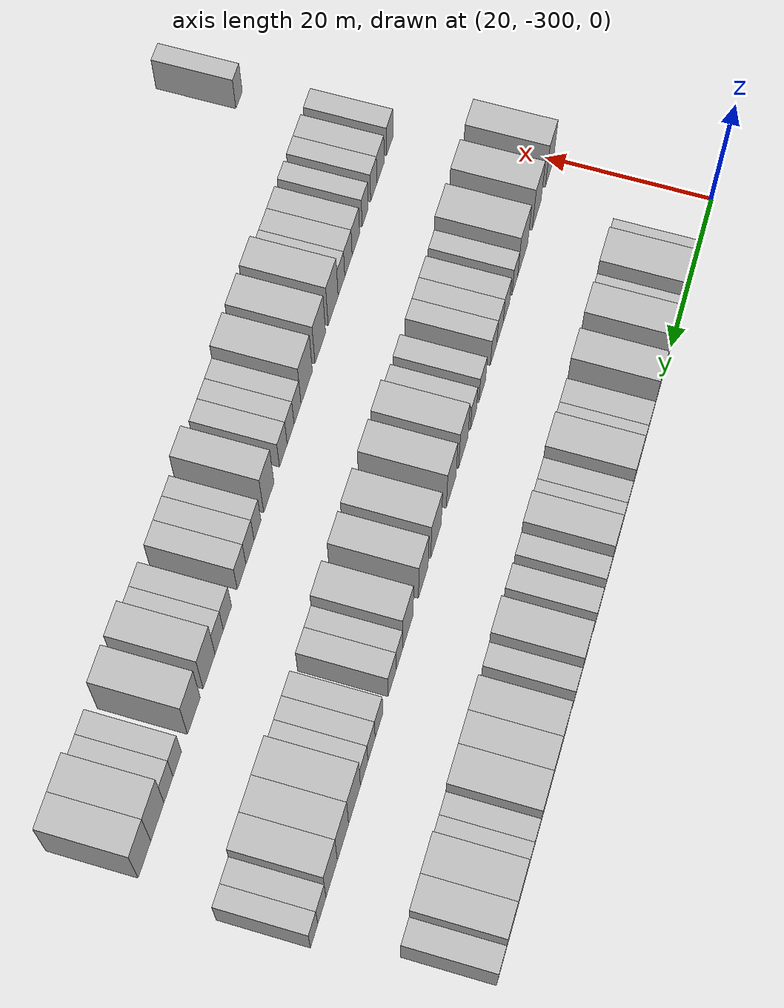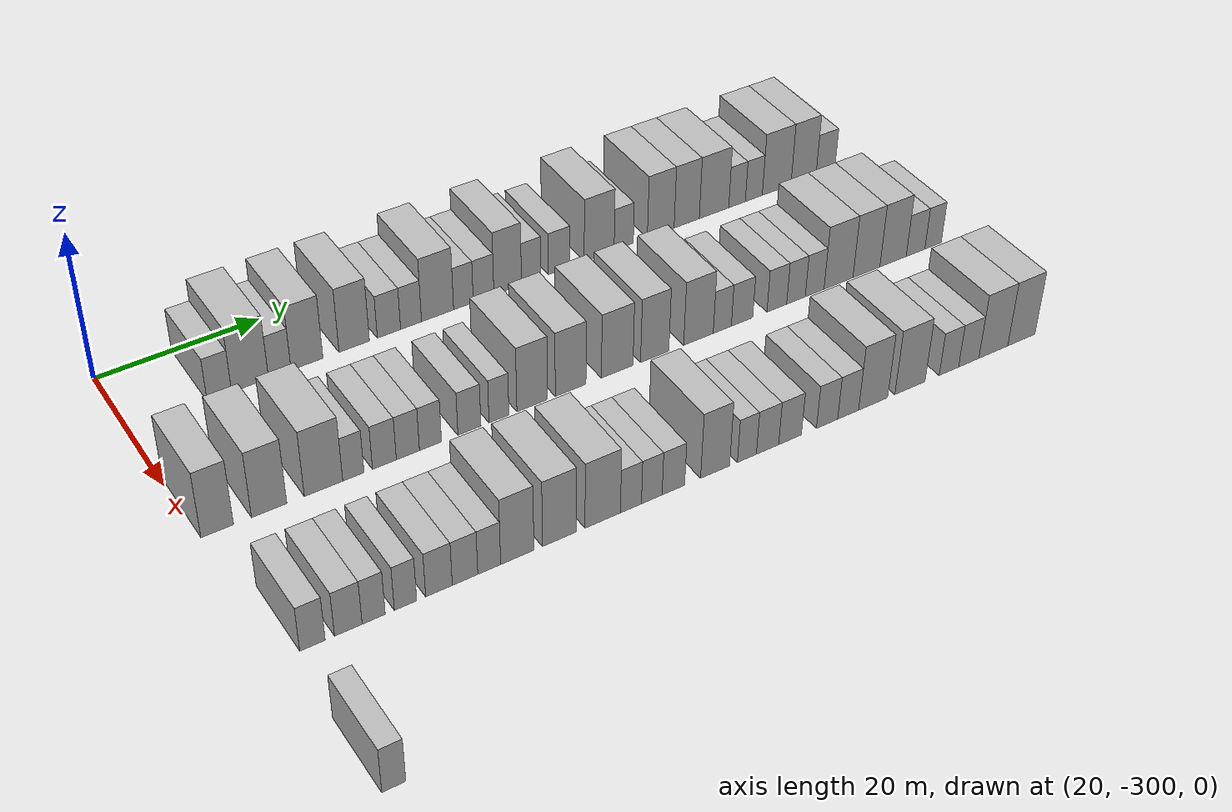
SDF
<sdf version="1.6">
 <world name="default">
  <model name="building_14">
   <static>1</static>
   <pose>25.0000 -289.3528 0 0.000000 0.000000 0.000000</pose>
   <link name="link">
    <pose>0 0 3.00 0 0 0</pose>
    <collision name="collision"><geometry><box><size>10.0000 2.9180 6.0000</size></box></geometry></collision>
    <visual name="visual">
     <cast_shadows>0</cast_shadows>
     <geometry><box><size>10.0000 2.9180 6.0000</size></box></geometry>
     <material>
      <script>
       <uri>model://HANNAS_wall/materials/scripts</uri>
       <uri>model://HANNAS_wall/materials/textures</uri>
       <name>vrc/HANNAS_wall</name>
      </script>
     </material>
    </visual>
   </link>
  </model>
  <model name="building_15">
   <static>1</static>
   <pose>25.0000 -285.6811 0 0.000000 0.000000 0.000000</pose>
   <link name="link">
    <pose>0 0 4.50 0 0 0</pose>
    <collision name="collision"><geometry><box><size>10.0000 4.4253 9.0000</size></box></geometry></collision>
    <visual name="visual">
     <cast_shadows>0</cast_shadows>
     <geometry><box><size>10.0000 4.4253 9.0000</size></box></geometry>
     <material>
      <script>
       <uri>model://HANNAS_wall/materials/scripts</uri>
       <uri>model://HANNAS_wall/materials/textures</uri>
       <name>vrc/HANNAS_wall</name>
      </script>
     </material>
    </visual>
   </link>
  </model>
  <model name="building_16">
   <static>1</static>
   <pose>25.0000 -282.0970 0 0.000000 0.000000 0.000000</pose>
   <link name="link">
    <pose>0 0 3.00 0 0 0</pose>
    <collision name="collision"><geometry><box><size>10.0000 2.7429 6.0000</size></box></geometry></collision>
    <visual name="visual">
     <cast_shadows>0</cast_shadows>
     <geometry><box><size>10.0000 2.7429 6.0000</size></box></geometry>
     <material>
      <script>
       <uri>model://HANNAS_wall/materials/scripts</uri>
       <uri>model://HANNAS_wall/materials/textures</uri>
       <name>vrc/HANNAS_wall</name>
      </script>
     </material>
    </visual>
   </link>
  </model>
  <model name="building_17">
   <static>1</static>
   <pose>25.0000 -278.7646 0 0.000000 0.000000 0.000000</pose>
   <link name="link">
    <pose>0 0 4.50 0 0 0</pose>
    <collision name="collision"><geometry><box><size>10.0000 3.9218 9.0000</size></box></geometry></collision>
    <visual name="visual">
     <cast_shadows>0</cast_shadows>
     <geometry><box><size>10.0000 3.9218 9.0000</size></box></geometry>
     <material>
      <script>
       <uri>model://HANNAS_wall/materials/scripts</uri>
       <uri>model://HANNAS_wall/materials/textures</uri>
       <name>vrc/HANNAS_wall</name>
      </script>
     </material>
    </visual>
   </link>
  </model>
  <model name="building_18">
   <static>1</static>
   <pose>25.0000 -272.8921 0 0.000000 0.000000 0.000000</pose>
   <link name="link">
    <pose>0 0 4.50 0 0 0</pose>
    <collision name="collision"><geometry><box><size>10.0000 3.8233 9.0000</size></box></geometry></collision>
    <visual name="visual">
     <cast_shadows>0</cast_shadows>
     <geometry><box><size>10.0000 3.8233 9.0000</size></box></geometry>
     <material>
      <script>
       <uri>model://HANNAS_wall/materials/scripts</uri>
       <uri>model://HANNAS_wall/materials/textures</uri>
       <name>vrc/HANNAS_wall</name>
      </script>
     </material>
    </visual>
   </link>
  </model>
  <model name="building_19">
   <static>1</static>
   <pose>25.0000 -268.4926 0 0.000000 0.000000 0.000000</pose>
   <link name="link">
    <pose>0 0 3.00 0 0 0</pose>
    <collision name="collision"><geometry><box><size>10.0000 2.9757 6.0000</size></box></geometry></collision>
    <visual name="visual">
     <cast_shadows>0</cast_shadows>
     <geometry><box><size>10.0000 2.9757 6.0000</size></box></geometry>
     <material>
      <script>
       <uri>model://HANNAS_wall/materials/scripts</uri>
       <uri>model://HANNAS_wall/materials/textures</uri>
       <name>vrc/HANNAS_wall</name>
      </script>
     </material>
    </visual>
   </link>
  </model>
  <model name="building_20">
   <static>1</static>
   <pose>25.0000 -265.6619 0 0.000000 0.000000 0.000000</pose>
   <link name="link">
    <pose>0 0 3.00 0 0 0</pose>
    <collision name="collision"><geometry><box><size>10.0000 2.6859 6.0000</size></box></geometry></collision>
    <visual name="visual">
     <cast_shadows>0</cast_shadows>
     <geometry><box><size>10.0000 2.6859 6.0000</size></box></geometry>
     <material>
      <script>
       <uri>model://HANNAS_wall/materials/scripts</uri>
       <uri>model://HANNAS_wall/materials/textures</uri>
       <name>vrc/HANNAS_wall</name>
      </script>
     </material>
    </visual>
   </link>
  </model>
  <model name="building_21">
   <static>1</static>
   <pose>25.0000 -262.2273 0 0.000000 0.000000 0.000000</pose>
   <link name="link">
    <pose>0 0 4.50 0 0 0</pose>
    <collision name="collision"><geometry><box><size>10.0000 4.1832 9.0000</size></box></geometry></collision>
    <visual name="visual">
     <cast_shadows>0</cast_shadows>
     <geometry><box><size>10.0000 4.1832 9.0000</size></box></geometry>
     <material>
      <script>
       <uri>model://HANNAS_wall/materials/scripts</uri>
       <uri>model://HANNAS_wall/materials/textures</uri>
       <name>vrc/HANNAS_wall</name>
      </script>
     </material>
    </visual>
   </link>
  </model>
  <model name="building_22">
   <static>1</static>
   <pose>25.0000 -258.8390 0 0.000000 0.000000 0.000000</pose>
   <link name="link">
    <pose>0 0 3.00 0 0 0</pose>
    <collision name="collision"><geometry><box><size>10.0000 2.5935 6.0000</size></box></geometry></collision>
    <visual name="visual">
     <cast_shadows>0</cast_shadows>
     <geometry><box><size>10.0000 2.5935 6.0000</size></box></geometry>
     <material>
      <script>
       <uri>model://HANNAS_wall/materials/scripts</uri>
       <uri>model://HANNAS_wall/materials/textures</uri>
       <name>vrc/HANNAS_wall</name>
      </script>
     </material>
    </visual>
   </link>
  </model>
  <model name="building_23">
   <static>1</static>
   <pose>25.0000 -256.1742 0 0.000000 0.000000 0.000000</pose>
   <link name="link">
    <pose>0 0 3.00 0 0 0</pose>
    <collision name="collision"><geometry><box><size>10.0000 2.7360 6.0000</size></box></geometry></collision>
    <visual name="visual">
     <cast_shadows>0</cast_shadows>
     <geometry><box><size>10.0000 2.7360 6.0000</size></box></geometry>
     <material>
      <script>
       <uri>model://HANNAS_wall/materials/scripts</uri>
       <uri>model://HANNAS_wall/materials/textures</uri>
       <name>vrc/HANNAS_wall</name>
      </script>
     </material>
    </visual>
   </link>
  </model>
  <model name="building_24">
   <static>1</static>
   <pose>25.0000 -252.9515 0 0.000000 0.000000 0.000000</pose>
   <link name="link">
    <pose>0 0 4.50 0 0 0</pose>
    <collision name="collision"><geometry><box><size>10.0000 3.7094 9.0000</size></box></geometry></collision>
    <visual name="visual">
     <cast_shadows>0</cast_shadows>
     <geometry><box><size>10.0000 3.7094 9.0000</size></box></geometry>
     <material>
      <script>
       <uri>model://HANNAS_wall/materials/scripts</uri>
       <uri>model://HANNAS_wall/materials/textures</uri>
       <name>vrc/HANNAS_wall</name>
      </script>
     </material>
    </visual>
   </link>
  </model>
  <model name="building_25">
   <static>1</static>
   <pose>25.0000 -249.7769 0 0.000000 0.000000 0.000000</pose>
   <link name="link">
    <pose>0 0 3.00 0 0 0</pose>
    <collision name="collision"><geometry><box><size>10.0000 2.6398 6.0000</size></box></geometry></collision>
    <visual name="visual">
     <cast_shadows>0</cast_shadows>
     <geometry><box><size>10.0000 2.6398 6.0000</size></box></geometry>
     <material>
      <script>
       <uri>model://HANNAS_wall/materials/scripts</uri>
       <uri>model://HANNAS_wall/materials/textures</uri>
       <name>vrc/HANNAS_wall</name>
      </script>
     </material>
    </visual>
   </link>
  </model>
  <model name="building_26">
   <static>1</static>
   <pose>25.0000 -245.9843 0 0.000000 0.000000 0.000000</pose>
   <link name="link">
    <pose>0 0 3.00 0 0 0</pose>
    <collision name="collision"><geometry><box><size>10.0000 2.9455 6.0000</size></box></geometry></collision>
    <visual name="visual">
     <cast_shadows>0</cast_shadows>
     <geometry><box><size>10.0000 2.9455 6.0000</size></box></geometry>
     <material>
      <script>
       <uri>model://HANNAS_wall/materials/scripts</uri>
       <uri>model://HANNAS_wall/materials/textures</uri>
       <name>vrc/HANNAS_wall</name>
      </script>
     </material>
    </visual>
   </link>
  </model>
  <model name="building_27">
   <static>1</static>
   <pose>25.0000 -240.4150 0 0.000000 0.000000 0.000000</pose>
   <link name="link">
    <pose>0 0 4.50 0 0 0</pose>
    <collision name="collision"><geometry><box><size>10.0000 4.1932 9.0000</size></box></geometry></collision>
    <visual name="visual">
     <cast_shadows>0</cast_shadows>
     <geometry><box><size>10.0000 4.1932 9.0000</size></box></geometry>
     <material>
      <script>
       <uri>model://HANNAS_wall/materials/scripts</uri>
       <uri>model://HANNAS_wall/materials/textures</uri>
       <name>vrc/HANNAS_wall</name>
      </script>
     </material>
    </visual>
   </link>
  </model>
  <model name="building_28">
   <static>1</static>
   <pose>25.0000 -236.9606 0 0.000000 0.000000 0.000000</pose>
   <link name="link">
    <pose>0 0 3.00 0 0 0</pose>
    <collision name="collision"><geometry><box><size>10.0000 2.7154 6.0000</size></box></geometry></collision>
    <visual name="visual">
     <cast_shadows>0</cast_shadows>
     <geometry><box><size>10.0000 2.7154 6.0000</size></box></geometry>
     <material>
      <script>
       <uri>model://HANNAS_wall/materials/scripts</uri>
       <uri>model://HANNAS_wall/materials/textures</uri>
       <name>vrc/HANNAS_wall</name>
      </script>
     </material>
    </visual>
   </link>
  </model>
  <model name="building_29">
   <static>1</static>
   <pose>25.0000 -231.6772 0 0.000000 0.000000 0.000000</pose>
   <link name="link">
    <pose>0 0 4.50 0 0 0</pose>
    <collision name="collision"><geometry><box><size>10.0000 3.8514 9.0000</size></box></geometry></collision>
    <visual name="visual">
     <cast_shadows>0</cast_shadows>
     <geometry><box><size>10.0000 3.8514 9.0000</size></box></geometry>
     <material>
      <script>
       <uri>model://HANNAS_wall/materials/scripts</uri>
       <uri>model://HANNAS_wall/materials/textures</uri>
       <name>vrc/HANNAS_wall</name>
      </script>
     </material>
    </visual>
   </link>
  </model>
  <model name="building_30">
   <static>1</static>
   <pose>25.0000 -227.9165 0 0.000000 0.000000 0.000000</pose>
   <link name="link">
    <pose>0 0 4.50 0 0 0</pose>
    <collision name="collision"><geometry><box><size>10.0000 3.6700 9.0000</size></box></geometry></collision>
    <visual name="visual">
     <cast_shadows>0</cast_shadows>
     <geometry><box><size>10.0000 3.6700 9.0000</size></box></geometry>
     <material>
      <script>
       <uri>model://HANNAS_wall/materials/scripts</uri>
       <uri>model://HANNAS_wall/materials/textures</uri>
       <name>vrc/HANNAS_wall</name>
      </script>
     </material>
    </visual>
   </link>
  </model>
  <model name="building_31">
   <static>1</static>
   <pose>25.0000 -223.9107 0 0.000000 0.000000 0.000000</pose>
   <link name="link">
    <pose>0 0 4.50 0 0 0</pose>
    <collision name="collision"><geometry><box><size>10.0000 4.3416 9.0000</size></box></geometry></collision>
    <visual name="visual">
     <cast_shadows>0</cast_shadows>
     <geometry><box><size>10.0000 4.3416 9.0000</size></box></geometry>
     <material>
      <script>
       <uri>model://HANNAS_wall/materials/scripts</uri>
       <uri>model://HANNAS_wall/materials/textures</uri>
       <name>vrc/HANNAS_wall</name>
      </script>
     </material>
    </visual>
   </link>
  </model>
  <model name="building_32">
   <static>1</static>
   <pose>25.0000 -220.4980 0 0.000000 0.000000 0.000000</pose>
   <link name="link">
    <pose>0 0 3.00 0 0 0</pose>
    <collision name="collision"><geometry><box><size>10.0000 2.4838 6.0000</size></box></geometry></collision>
    <visual name="visual">
     <cast_shadows>0</cast_shadows>
     <geometry><box><size>10.0000 2.4838 6.0000</size></box></geometry>
     <material>
      <script>
       <uri>model://HANNAS_wall/materials/scripts</uri>
       <uri>model://HANNAS_wall/materials/textures</uri>
       <name>vrc/HANNAS_wall</name>
      </script>
     </material>
    </visual>
   </link>
  </model>
  <model name="building_33">
   <static>1</static>
   <pose>25.0000 -217.9826 0 0.000000 0.000000 0.000000</pose>
   <link name="link">
    <pose>0 0 3.00 0 0 0</pose>
    <collision name="collision"><geometry><box><size>10.0000 2.5470 6.0000</size></box></geometry></collision>
    <visual name="visual">
     <cast_shadows>0</cast_shadows>
     <geometry><box><size>10.0000 2.5470 6.0000</size></box></geometry>
     <material>
      <script>
       <uri>model://HANNAS_wall/materials/scripts</uri>
       <uri>model://HANNAS_wall/materials/textures</uri>
       <name>vrc/HANNAS_wall</name>
      </script>
     </material>
    </visual>
   </link>
  </model>
  <model name="building_34">
   <static>1</static>
   <pose>25.0000 -214.5313 0 0.000000 0.000000 0.000000</pose>
   <link name="link">
    <pose>0 0 4.50 0 0 0</pose>
    <collision name="collision"><geometry><box><size>10.0000 4.3558 9.0000</size></box></geometry></collision>
    <visual name="visual">
     <cast_shadows>0</cast_shadows>
     <geometry><box><size>10.0000 4.3558 9.0000</size></box></geometry>
     <material>
      <script>
       <uri>model://HANNAS_wall/materials/scripts</uri>
       <uri>model://HANNAS_wall/materials/textures</uri>
       <name>vrc/HANNAS_wall</name>
      </script>
     </material>
    </visual>
   </link>
  </model>
  <model name="building_35">
   <static>1</static>
   <pose>25.0000 -210.4269 0 0.000000 0.000000 0.000000</pose>
   <link name="link">
    <pose>0 0 4.50 0 0 0</pose>
    <collision name="collision"><geometry><box><size>10.0000 3.8530 9.0000</size></box></geometry></collision>
    <visual name="visual">
     <cast_shadows>0</cast_shadows>
     <geometry><box><size>10.0000 3.8530 9.0000</size></box></geometry>
     <material>
      <script>
       <uri>model://HANNAS_wall/materials/scripts</uri>
       <uri>model://HANNAS_wall/materials/textures</uri>
       <name>vrc/HANNAS_wall</name>
      </script>
     </material>
    </visual>
   </link>
  </model>
  <model name="building_36">
   <static>1</static>
   <pose>25.0000 -207.0362 0 0.000000 0.000000 0.000000</pose>
   <link name="link">
    <pose>0 0 3.00 0 0 0</pose>
    <collision name="collision"><geometry><box><size>10.0000 2.9283 6.0000</size></box></geometry></collision>
    <visual name="visual">
     <cast_shadows>0</cast_shadows>
     <geometry><box><size>10.0000 2.9283 6.0000</size></box></geometry>
     <material>
      <script>
       <uri>model://HANNAS_wall/materials/scripts</uri>
       <uri>model://HANNAS_wall/materials/textures</uri>
       <name>vrc/HANNAS_wall</name>
      </script>
     </material>
    </visual>
   </link>
  </model>
  <model name="building_171">
   <static>1</static>
   <pose>44.0000 -297.9193 0 0.000000 0.000000 0.000000</pose>
   <link name="link">
    <pose>0 0 4.50 0 0 0</pose>
    <collision name="collision"><geometry><box><size>10.0000 3.6003 9.0000</size></box></geometry></collision>
    <visual name="visual">
     <cast_shadows>0</cast_shadows>
     <geometry><box><size>10.0000 3.6003 9.0000</size></box></geometry>
     <material>
      <script>
       <uri>model://HANNAS_wall/materials/scripts</uri>
       <uri>model://HANNAS_wall/materials/textures</uri>
       <name>vrc/HANNAS_wall</name>
      </script>
     </material>
    </visual>
   </link>
  </model>
  <model name="building_172">
   <static>1</static>
   <pose>44.0000 -292.1289 0 0.000000 0.000000 0.000000</pose>
   <link name="link">
    <pose>0 0 4.50 0 0 0</pose>
    <collision name="collision"><geometry><box><size>10.0000 3.9805 9.0000</size></box></geometry></collision>
    <visual name="visual">
     <cast_shadows>0</cast_shadows>
     <geometry><box><size>10.0000 3.9805 9.0000</size></box></geometry>
     <material>
      <script>
       <uri>model://HANNAS_wall/materials/scripts</uri>
       <uri>model://HANNAS_wall/materials/textures</uri>
       <name>vrc/HANNAS_wall</name>
      </script>
     </material>
    </visual>
   </link>
  </model>
  <model name="building_173">
   <static>1</static>
   <pose>44.0000 -285.9234 0 0.000000 0.000000 0.000000</pose>
   <link name="link">
    <pose>0 0 4.50 0 0 0</pose>
    <collision name="collision"><geometry><box><size>10.0000 4.4305 9.0000</size></box></geometry></collision>
    <visual name="visual">
     <cast_shadows>0</cast_shadows>
     <geometry><box><size>10.0000 4.4305 9.0000</size></box></geometry>
     <material>
      <script>
       <uri>model://HANNAS_wall/materials/scripts</uri>
       <uri>model://HANNAS_wall/materials/textures</uri>
       <name>vrc/HANNAS_wall</name>
      </script>
     </material>
    </visual>
   </link>
  </model>
  <model name="building_174">
   <static>1</static>
   <pose>44.0000 -282.4684 0 0.000000 0.000000 0.000000</pose>
   <link name="link">
    <pose>0 0 3.00 0 0 0</pose>
    <collision name="collision"><geometry><box><size>10.0000 2.4795 6.0000</size></box></geometry></collision>
    <visual name="visual">
     <cast_shadows>0</cast_shadows>
     <geometry><box><size>10.0000 2.4795 6.0000</size></box></geometry>
     <material>
      <script>
       <uri>model://HANNAS_wall/materials/scripts</uri>
       <uri>model://HANNAS_wall/materials/textures</uri>
       <name>vrc/HANNAS_wall</name>
      </script>
     </material>
    </visual>
   </link>
  </model>
  <model name="building_175">
   <static>1</static>
   <pose>44.0000 -278.8173 0 0.000000 0.000000 0.000000</pose>
   <link name="link">
    <pose>0 0 3.00 0 0 0</pose>
    <collision name="collision"><geometry><box><size>10.0000 2.8227 6.0000</size></box></geometry></collision>
    <visual name="visual">
     <cast_shadows>0</cast_shadows>
     <geometry><box><size>10.0000 2.8227 6.0000</size></box></geometry>
     <material>
      <script>
       <uri>model://HANNAS_wall/materials/scripts</uri>
       <uri>model://HANNAS_wall/materials/textures</uri>
       <name>vrc/HANNAS_wall</name>
      </script>
     </material>
    </visual>
   </link>
  </model>
  <model name="building_176">
   <static>1</static>
   <pose>44.0000 -276.0262 0 0.000000 0.000000 0.000000</pose>
   <link name="link">
    <pose>0 0 3.00 0 0 0</pose>
    <collision name="collision"><geometry><box><size>10.0000 2.7595 6.0000</size></box></geometry></collision>
    <visual name="visual">
     <cast_shadows>0</cast_shadows>
     <geometry><box><size>10.0000 2.7595 6.0000</size></box></geometry>
     <material>
      <script>
       <uri>model://HANNAS_wall/materials/scripts</uri>
       <uri>model://HANNAS_wall/materials/textures</uri>
       <name>vrc/HANNAS_wall</name>
      </script>
     </material>
    </visual>
   </link>
  </model>
  <model name="building_177">
   <static>1</static>
   <pose>44.0000 -273.3144 0 0.000000 0.000000 0.000000</pose>
   <link name="link">
    <pose>0 0 3.00 0 0 0</pose>
    <collision name="collision"><geometry><box><size>10.0000 2.6642 6.0000</size></box></geometry></collision>
    <visual name="visual">
     <cast_shadows>0</cast_shadows>
     <geometry><box><size>10.0000 2.6642 6.0000</size></box></geometry>
     <material>
      <script>
       <uri>model://HANNAS_wall/materials/scripts</uri>
       <uri>model://HANNAS_wall/materials/textures</uri>
       <name>vrc/HANNAS_wall</name>
      </script>
     </material>
    </visual>
   </link>
  </model>
  <model name="building_178">
   <static>1</static>
   <pose>44.0000 -268.5683 0 0.000000 0.000000 0.000000</pose>
   <link name="link">
    <pose>0 0 3.00 0 0 0</pose>
    <collision name="collision"><geometry><box><size>10.0000 2.8280 6.0000</size></box></geometry></collision>
    <visual name="visual">
     <cast_shadows>0</cast_shadows>
     <geometry><box><size>10.0000 2.8280 6.0000</size></box></geometry>
     <material>
      <script>
       <uri>model://HANNAS_wall/materials/scripts</uri>
       <uri>model://HANNAS_wall/materials/textures</uri>
       <name>vrc/HANNAS_wall</name>
      </script>
     </material>
    </visual>
   </link>
  </model>
  <model name="building_179">
   <static>1</static>
   <pose>44.0000 -264.9161 0 0.000000 0.000000 0.000000</pose>
   <link name="link">
    <pose>0 0 3.00 0 0 0</pose>
    <collision name="collision"><geometry><box><size>10.0000 2.4763 6.0000</size></box></geometry></collision>
    <visual name="visual">
     <cast_shadows>0</cast_shadows>
     <geometry><box><size>10.0000 2.4763 6.0000</size></box></geometry>
     <material>
      <script>
       <uri>model://HANNAS_wall/materials/scripts</uri>
       <uri>model://HANNAS_wall/materials/textures</uri>
       <name>vrc/HANNAS_wall</name>
      </script>
     </material>
    </visual>
   </link>
  </model>
  <model name="building_180">
   <static>1</static>
   <pose>44.0000 -260.7488 0 0.000000 0.000000 0.000000</pose>
   <link name="link">
    <pose>0 0 4.50 0 0 0</pose>
    <collision name="collision"><geometry><box><size>10.0000 3.8584 9.0000</size></box></geometry></collision>
    <visual name="visual">
     <cast_shadows>0</cast_shadows>
     <geometry><box><size>10.0000 3.8584 9.0000</size></box></geometry>
     <material>
      <script>
       <uri>model://HANNAS_wall/materials/scripts</uri>
       <uri>model://HANNAS_wall/materials/textures</uri>
       <name>vrc/HANNAS_wall</name>
      </script>
     </material>
    </visual>
   </link>
  </model>
  <model name="building_181">
   <static>1</static>
   <pose>44.0000 -255.8509 0 0.000000 0.000000 0.000000</pose>
   <link name="link">
    <pose>0 0 4.50 0 0 0</pose>
    <collision name="collision"><geometry><box><size>10.0000 3.9374 9.0000</size></box></geometry></collision>
    <visual name="visual">
     <cast_shadows>0</cast_shadows>
     <geometry><box><size>10.0000 3.9374 9.0000</size></box></geometry>
     <material>
      <script>
       <uri>model://HANNAS_wall/materials/scripts</uri>
       <uri>model://HANNAS_wall/materials/textures</uri>
       <name>vrc/HANNAS_wall</name>
      </script>
     </material>
    </visual>
   </link>
  </model>
  <model name="building_182">
   <static>1</static>
   <pose>44.0000 -249.8066 0 0.000000 0.000000 0.000000</pose>
   <link name="link">
    <pose>0 0 4.50 0 0 0</pose>
    <collision name="collision"><geometry><box><size>10.0000 4.1511 9.0000</size></box></geometry></collision>
    <visual name="visual">
     <cast_shadows>0</cast_shadows>
     <geometry><box><size>10.0000 4.1511 9.0000</size></box></geometry>
     <material>
      <script>
       <uri>model://HANNAS_wall/materials/scripts</uri>
       <uri>model://HANNAS_wall/materials/textures</uri>
       <name>vrc/HANNAS_wall</name>
      </script>
     </material>
    </visual>
   </link>
  </model>
  <model name="building_183">
   <static>1</static>
   <pose>44.0000 -244.8420 0 0.000000 0.000000 0.000000</pose>
   <link name="link">
    <pose>0 0 4.50 0 0 0</pose>
    <collision name="collision"><geometry><box><size>10.0000 3.7780 9.0000</size></box></geometry></collision>
    <visual name="visual">
     <cast_shadows>0</cast_shadows>
     <geometry><box><size>10.0000 3.7780 9.0000</size></box></geometry>
     <material>
      <script>
       <uri>model://HANNAS_wall/materials/scripts</uri>
       <uri>model://HANNAS_wall/materials/textures</uri>
       <name>vrc/HANNAS_wall</name>
      </script>
     </material>
    </visual>
   </link>
  </model>
  <model name="building_184">
   <static>1</static>
   <pose>44.0000 -238.9400 0 0.000000 0.000000 0.000000</pose>
   <link name="link">
    <pose>0 0 4.50 0 0 0</pose>
    <collision name="collision"><geometry><box><size>10.0000 4.0260 9.0000</size></box></geometry></collision>
    <visual name="visual">
     <cast_shadows>0</cast_shadows>
     <geometry><box><size>10.0000 4.0260 9.0000</size></box></geometry>
     <material>
      <script>
       <uri>model://HANNAS_wall/materials/scripts</uri>
       <uri>model://HANNAS_wall/materials/textures</uri>
       <name>vrc/HANNAS_wall</name>
      </script>
     </material>
    </visual>
   </link>
  </model>
  <model name="building_185">
   <static>1</static>
   <pose>44.0000 -235.6801 0 0.000000 0.000000 0.000000</pose>
   <link name="link">
    <pose>0 0 3.00 0 0 0</pose>
    <collision name="collision"><geometry><box><size>10.0000 2.4937 6.0000</size></box></geometry></collision>
    <visual name="visual">
     <cast_shadows>0</cast_shadows>
     <geometry><box><size>10.0000 2.4937 6.0000</size></box></geometry>
     <material>
      <script>
       <uri>model://HANNAS_wall/materials/scripts</uri>
       <uri>model://HANNAS_wall/materials/textures</uri>
       <name>vrc/HANNAS_wall</name>
      </script>
     </material>
    </visual>
   </link>
  </model>
  <model name="building_186">
   <static>1</static>
   <pose>44.0000 -232.9481 0 0.000000 0.000000 0.000000</pose>
   <link name="link">
    <pose>0 0 3.00 0 0 0</pose>
    <collision name="collision"><geometry><box><size>10.0000 2.9704 6.0000</size></box></geometry></collision>
    <visual name="visual">
     <cast_shadows>0</cast_shadows>
     <geometry><box><size>10.0000 2.9704 6.0000</size></box></geometry>
     <material>
      <script>
       <uri>model://HANNAS_wall/materials/scripts</uri>
       <uri>model://HANNAS_wall/materials/textures</uri>
       <name>vrc/HANNAS_wall</name>
      </script>
     </material>
    </visual>
   </link>
  </model>
  <model name="building_187">
   <static>1</static>
   <pose>44.0000 -228.0709 0 0.000000 0.000000 0.000000</pose>
   <link name="link">
    <pose>0 0 3.00 0 0 0</pose>
    <collision name="collision"><geometry><box><size>10.0000 2.7840 6.0000</size></box></geometry></collision>
    <visual name="visual">
     <cast_shadows>0</cast_shadows>
     <geometry><box><size>10.0000 2.7840 6.0000</size></box></geometry>
     <material>
      <script>
       <uri>model://HANNAS_wall/materials/scripts</uri>
       <uri>model://HANNAS_wall/materials/textures</uri>
       <name>vrc/HANNAS_wall</name>
      </script>
     </material>
    </visual>
   </link>
  </model>
  <model name="building_188">
   <static>1</static>
   <pose>44.0000 -225.3515 0 0.000000 0.000000 0.000000</pose>
   <link name="link">
    <pose>0 0 3.00 0 0 0</pose>
    <collision name="collision"><geometry><box><size>10.0000 2.6549 6.0000</size></box></geometry></collision>
    <visual name="visual">
     <cast_shadows>0</cast_shadows>
     <geometry><box><size>10.0000 2.6549 6.0000</size></box></geometry>
     <material>
      <script>
       <uri>model://HANNAS_wall/materials/scripts</uri>
       <uri>model://HANNAS_wall/materials/textures</uri>
       <name>vrc/HANNAS_wall</name>
      </script>
     </material>
    </visual>
   </link>
  </model>
  <model name="building_189">
   <static>1</static>
   <pose>44.0000 -222.6788 0 0.000000 0.000000 0.000000</pose>
   <link name="link">
    <pose>0 0 3.00 0 0 0</pose>
    <collision name="collision"><geometry><box><size>10.0000 2.6906 6.0000</size></box></geometry></collision>
    <visual name="visual">
     <cast_shadows>0</cast_shadows>
     <geometry><box><size>10.0000 2.6906 6.0000</size></box></geometry>
     <material>
      <script>
       <uri>model://HANNAS_wall/materials/scripts</uri>
       <uri>model://HANNAS_wall/materials/textures</uri>
       <name>vrc/HANNAS_wall</name>
      </script>
     </material>
    </visual>
   </link>
  </model>
  <model name="building_190">
   <static>1</static>
   <pose>44.0000 -219.2237 0 0.000000 0.000000 0.000000</pose>
   <link name="link">
    <pose>0 0 4.50 0 0 0</pose>
    <collision name="collision"><geometry><box><size>10.0000 4.2195 9.0000</size></box></geometry></collision>
    <visual name="visual">
     <cast_shadows>0</cast_shadows>
     <geometry><box><size>10.0000 4.2195 9.0000</size></box></geometry>
     <material>
      <script>
       <uri>model://HANNAS_wall/materials/scripts</uri>
       <uri>model://HANNAS_wall/materials/textures</uri>
       <name>vrc/HANNAS_wall</name>
      </script>
     </material>
    </visual>
   </link>
  </model>
  <model name="building_191">
   <static>1</static>
   <pose>44.0000 -215.1350 0 0.000000 0.000000 0.000000</pose>
   <link name="link">
    <pose>0 0 4.50 0 0 0</pose>
    <collision name="collision"><geometry><box><size>10.0000 3.9579 9.0000</size></box></geometry></collision>
    <visual name="visual">
     <cast_shadows>0</cast_shadows>
     <geometry><box><size>10.0000 3.9579 9.0000</size></box></geometry>
     <material>
      <script>
       <uri>model://HANNAS_wall/materials/scripts</uri>
       <uri>model://HANNAS_wall/materials/textures</uri>
       <name>vrc/HANNAS_wall</name>
      </script>
     </material>
    </visual>
   </link>
  </model>
  <model name="building_192">
   <static>1</static>
   <pose>44.0000 -211.1810 0 0.000000 0.000000 0.000000</pose>
   <link name="link">
    <pose>0 0 4.50 0 0 0</pose>
    <collision name="collision"><geometry><box><size>10.0000 3.9502 9.0000</size></box></geometry></collision>
    <visual name="visual">
     <cast_shadows>0</cast_shadows>
     <geometry><box><size>10.0000 3.9502 9.0000</size></box></geometry>
     <material>
      <script>
       <uri>model://HANNAS_wall/materials/scripts</uri>
       <uri>model://HANNAS_wall/materials/textures</uri>
       <name>vrc/HANNAS_wall</name>
      </script>
     </material>
    </visual>
   </link>
  </model>
  <model name="building_193">
   <static>1</static>
   <pose>44.0000 -207.7964 0 0.000000 0.000000 0.000000</pose>
   <link name="link">
    <pose>0 0 3.00 0 0 0</pose>
    <collision name="collision"><geometry><box><size>10.0000 2.8189 6.0000</size></box></geometry></collision>
    <visual name="visual">
     <cast_shadows>0</cast_shadows>
     <geometry><box><size>10.0000 2.8189 6.0000</size></box></geometry>
     <material>
      <script>
       <uri>model://HANNAS_wall/materials/scripts</uri>
       <uri>model://HANNAS_wall/materials/textures</uri>
       <name>vrc/HANNAS_wall</name>
      </script>
     </material>
    </visual>
   </link>
  </model>
  <model name="building_194">
   <static>1</static>
   <pose>44.0000 -205.1422 0 0.000000 0.000000 0.000000</pose>
   <link name="link">
    <pose>0 0 3.00 0 0 0</pose>
    <collision name="collision"><geometry><box><size>10.0000 2.4896 6.0000</size></box></geometry></collision>
    <visual name="visual">
     <cast_shadows>0</cast_shadows>
     <geometry><box><size>10.0000 2.4896 6.0000</size></box></geometry>
     <material>
      <script>
       <uri>model://HANNAS_wall/materials/scripts</uri>
       <uri>model://HANNAS_wall/materials/textures</uri>
       <name>vrc/HANNAS_wall</name>
      </script>
     </material>
    </visual>
   </link>
  </model>
  <model name="building_338">
   <static>1</static>
   <pose>63.0000 -296.3244 0 0.000000 0.000000 0.000000</pose>
   <link name="link">
    <pose>0 0 3.00 0 0 0</pose>
    <collision name="collision"><geometry><box><size>10.0000 2.7084 6.0000</size></box></geometry></collision>
    <visual name="visual">
     <cast_shadows>0</cast_shadows>
     <geometry><box><size>10.0000 2.7084 6.0000</size></box></geometry>
     <material>
      <script>
       <uri>model://HANNAS_wall/materials/scripts</uri>
       <uri>model://HANNAS_wall/materials/textures</uri>
       <name>vrc/HANNAS_wall</name>
      </script>
     </material>
    </visual>
   </link>
  </model>
  <model name="building_339">
   <static>1</static>
   <pose>63.0000 -292.4829 0 0.000000 0.000000 0.000000</pose>
   <link name="link">
    <pose>0 0 3.00 0 0 0</pose>
    <collision name="collision"><geometry><box><size>10.0000 2.9747 6.0000</size></box></geometry></collision>
    <visual name="visual">
     <cast_shadows>0</cast_shadows>
     <geometry><box><size>10.0000 2.9747 6.0000</size></box></geometry>
     <material>
      <script>
       <uri>model://HANNAS_wall/materials/scripts</uri>
       <uri>model://HANNAS_wall/materials/textures</uri>
       <name>vrc/HANNAS_wall</name>
      </script>
     </material>
    </visual>
   </link>
  </model>
  <model name="building_340">
   <static>1</static>
   <pose>63.0000 -289.7373 0 0.000000 0.000000 0.000000</pose>
   <link name="link">
    <pose>0 0 3.00 0 0 0</pose>
    <collision name="collision"><geometry><box><size>10.0000 2.5163 6.0000</size></box></geometry></collision>
    <visual name="visual">
     <cast_shadows>0</cast_shadows>
     <geometry><box><size>10.0000 2.5163 6.0000</size></box></geometry>
     <material>
      <script>
       <uri>model://HANNAS_wall/materials/scripts</uri>
       <uri>model://HANNAS_wall/materials/textures</uri>
       <name>vrc/HANNAS_wall</name>
      </script>
     </material>
    </visual>
   </link>
  </model>
  <model name="building_341">
   <static>1</static>
   <pose>63.0000 -286.2458 0 0.000000 0.000000 0.000000</pose>
   <link name="link">
    <pose>0 0 3.00 0 0 0</pose>
    <collision name="collision"><geometry><box><size>10.0000 2.4669 6.0000</size></box></geometry></collision>
    <visual name="visual">
     <cast_shadows>0</cast_shadows>
     <geometry><box><size>10.0000 2.4669 6.0000</size></box></geometry>
     <material>
      <script>
       <uri>model://HANNAS_wall/materials/scripts</uri>
       <uri>model://HANNAS_wall/materials/textures</uri>
       <name>vrc/HANNAS_wall</name>
      </script>
     </material>
    </visual>
   </link>
  </model>
  <model name="building_342">
   <static>1</static>
   <pose>63.0000 -282.5213 0 0.000000 0.000000 0.000000</pose>
   <link name="link">
    <pose>0 0 3.00 0 0 0</pose>
    <collision name="collision"><geometry><box><size>10.0000 2.9822 6.0000</size></box></geometry></collision>
    <visual name="visual">
     <cast_shadows>0</cast_shadows>
     <geometry><box><size>10.0000 2.9822 6.0000</size></box></geometry>
     <material>
      <script>
       <uri>model://HANNAS_wall/materials/scripts</uri>
       <uri>model://HANNAS_wall/materials/textures</uri>
       <name>vrc/HANNAS_wall</name>
      </script>
     </material>
    </visual>
   </link>
  </model>
  <model name="building_343">
   <static>1</static>
   <pose>63.0000 -279.5838 0 0.000000 0.000000 0.000000</pose>
   <link name="link">
    <pose>0 0 3.00 0 0 0</pose>
    <collision name="collision"><geometry><box><size>10.0000 2.8927 6.0000</size></box></geometry></collision>
    <visual name="visual">
     <cast_shadows>0</cast_shadows>
     <geometry><box><size>10.0000 2.8927 6.0000</size></box></geometry>
     <material>
      <script>
       <uri>model://HANNAS_wall/materials/scripts</uri>
       <uri>model://HANNAS_wall/materials/textures</uri>
       <name>vrc/HANNAS_wall</name>
      </script>
     </material>
    </visual>
   </link>
  </model>
  <model name="building_344">
   <static>1</static>
   <pose>63.0000 -276.8253 0 0.000000 0.000000 0.000000</pose>
   <link name="link">
    <pose>0 0 3.00 0 0 0</pose>
    <collision name="collision"><geometry><box><size>10.0000 2.6244 6.0000</size></box></geometry></collision>
    <visual name="visual">
     <cast_shadows>0</cast_shadows>
     <geometry><box><size>10.0000 2.6244 6.0000</size></box></geometry>
     <material>
      <script>
       <uri>model://HANNAS_wall/materials/scripts</uri>
       <uri>model://HANNAS_wall/materials/textures</uri>
       <name>vrc/HANNAS_wall</name>
      </script>
     </material>
    </visual>
   </link>
  </model>
  <model name="building_345">
   <static>1</static>
   <pose>63.0000 -273.5847 0 0.000000 0.000000 0.000000</pose>
   <link name="link">
    <pose>0 0 4.50 0 0 0</pose>
    <collision name="collision"><geometry><box><size>10.0000 3.8568 9.0000</size></box></geometry></collision>
    <visual name="visual">
     <cast_shadows>0</cast_shadows>
     <geometry><box><size>10.0000 3.8568 9.0000</size></box></geometry>
     <material>
      <script>
       <uri>model://HANNAS_wall/materials/scripts</uri>
       <uri>model://HANNAS_wall/materials/textures</uri>
       <name>vrc/HANNAS_wall</name>
      </script>
     </material>
    </visual>
   </link>
  </model>
  <model name="building_346">
   <static>1</static>
   <pose>63.0000 -268.6391 0 0.000000 0.000000 0.000000</pose>
   <link name="link">
    <pose>0 0 4.50 0 0 0</pose>
    <collision name="collision"><geometry><box><size>10.0000 4.0345 9.0000</size></box></geometry></collision>
    <visual name="visual">
     <cast_shadows>0</cast_shadows>
     <geometry><box><size>10.0000 4.0345 9.0000</size></box></geometry>
     <material>
      <script>
       <uri>model://HANNAS_wall/materials/scripts</uri>
       <uri>model://HANNAS_wall/materials/textures</uri>
       <name>vrc/HANNAS_wall</name>
      </script>
     </material>
    </visual>
   </link>
  </model>
  <model name="building_347">
   <static>1</static>
   <pose>63.0000 -263.4873 0 0.000000 0.000000 0.000000</pose>
   <link name="link">
    <pose>0 0 4.50 0 0 0</pose>
    <collision name="collision"><geometry><box><size>10.0000 4.2690 9.0000</size></box></geometry></collision>
    <visual name="visual">
     <cast_shadows>0</cast_shadows>
     <geometry><box><size>10.0000 4.2690 9.0000</size></box></geometry>
     <material>
      <script>
       <uri>model://HANNAS_wall/materials/scripts</uri>
       <uri>model://HANNAS_wall/materials/textures</uri>
       <name>vrc/HANNAS_wall</name>
      </script>
     </material>
    </visual>
   </link>
  </model>
  <model name="building_348">
   <static>1</static>
   <pose>63.0000 -260.0668 0 0.000000 0.000000 0.000000</pose>
   <link name="link">
    <pose>0 0 3.00 0 0 0</pose>
    <collision name="collision"><geometry><box><size>10.0000 2.5722 6.0000</size></box></geometry></collision>
    <visual name="visual">
     <cast_shadows>0</cast_shadows>
     <geometry><box><size>10.0000 2.5722 6.0000</size></box></geometry>
     <material>
      <script>
       <uri>model://HANNAS_wall/materials/scripts</uri>
       <uri>model://HANNAS_wall/materials/textures</uri>
       <name>vrc/HANNAS_wall</name>
      </script>
     </material>
    </visual>
   </link>
  </model>
  <model name="building_349">
   <static>1</static>
   <pose>63.0000 -257.5061 0 0.000000 0.000000 0.000000</pose>
   <link name="link">
    <pose>0 0 3.00 0 0 0</pose>
    <collision name="collision"><geometry><box><size>10.0000 2.5491 6.0000</size></box></geometry></collision>
    <visual name="visual">
     <cast_shadows>0</cast_shadows>
     <geometry><box><size>10.0000 2.5491 6.0000</size></box></geometry>
     <material>
      <script>
       <uri>model://HANNAS_wall/materials/scripts</uri>
       <uri>model://HANNAS_wall/materials/textures</uri>
       <name>vrc/HANNAS_wall</name>
      </script>
     </material>
    </visual>
   </link>
  </model>
  <model name="building_350">
   <static>1</static>
   <pose>63.0000 -254.8264 0 0.000000 0.000000 0.000000</pose>
   <link name="link">
    <pose>0 0 3.00 0 0 0</pose>
    <collision name="collision"><geometry><box><size>10.0000 2.8103 6.0000</size></box></geometry></collision>
    <visual name="visual">
     <cast_shadows>0</cast_shadows>
     <geometry><box><size>10.0000 2.8103 6.0000</size></box></geometry>
     <material>
      <script>
       <uri>model://HANNAS_wall/materials/scripts</uri>
       <uri>model://HANNAS_wall/materials/textures</uri>
       <name>vrc/HANNAS_wall</name>
      </script>
     </material>
    </visual>
   </link>
  </model>
  <model name="building_351">
   <static>1</static>
   <pose>63.0000 -249.5802 0 0.000000 0.000000 0.000000</pose>
   <link name="link">
    <pose>0 0 4.50 0 0 0</pose>
    <collision name="collision"><geometry><box><size>10.0000 3.6820 9.0000</size></box></geometry></collision>
    <visual name="visual">
     <cast_shadows>0</cast_shadows>
     <geometry><box><size>10.0000 3.6820 9.0000</size></box></geometry>
     <material>
      <script>
       <uri>model://HANNAS_wall/materials/scripts</uri>
       <uri>model://HANNAS_wall/materials/textures</uri>
       <name>vrc/HANNAS_wall</name>
      </script>
     </material>
    </visual>
   </link>
  </model>
  <model name="building_352">
   <static>1</static>
   <pose>63.0000 -245.5156 0 0.000000 0.000000 0.000000</pose>
   <link name="link">
    <pose>0 0 3.00 0 0 0</pose>
    <collision name="collision"><geometry><box><size>10.0000 2.4472 6.0000</size></box></geometry></collision>
    <visual name="visual">
     <cast_shadows>0</cast_shadows>
     <geometry><box><size>10.0000 2.4472 6.0000</size></box></geometry>
     <material>
      <script>
       <uri>model://HANNAS_wall/materials/scripts</uri>
       <uri>model://HANNAS_wall/materials/textures</uri>
       <name>vrc/HANNAS_wall</name>
      </script>
     </material>
    </visual>
   </link>
  </model>
  <model name="building_353">
   <static>1</static>
   <pose>63.0000 -242.8443 0 0.000000 0.000000 0.000000</pose>
   <link name="link">
    <pose>0 0 3.00 0 0 0</pose>
    <collision name="collision"><geometry><box><size>10.0000 2.8953 6.0000</size></box></geometry></collision>
    <visual name="visual">
     <cast_shadows>0</cast_shadows>
     <geometry><box><size>10.0000 2.8953 6.0000</size></box></geometry>
     <material>
      <script>
       <uri>model://HANNAS_wall/materials/scripts</uri>
       <uri>model://HANNAS_wall/materials/textures</uri>
       <name>vrc/HANNAS_wall</name>
      </script>
     </material>
    </visual>
   </link>
  </model>
  <model name="building_354">
   <static>1</static>
   <pose>63.0000 -239.9007 0 0.000000 0.000000 0.000000</pose>
   <link name="link">
    <pose>0 0 3.00 0 0 0</pose>
    <collision name="collision"><geometry><box><size>10.0000 2.9919 6.0000</size></box></geometry></collision>
    <visual name="visual">
     <cast_shadows>0</cast_shadows>
     <geometry><box><size>10.0000 2.9919 6.0000</size></box></geometry>
     <material>
      <script>
       <uri>model://HANNAS_wall/materials/scripts</uri>
       <uri>model://HANNAS_wall/materials/textures</uri>
       <name>vrc/HANNAS_wall</name>
      </script>
     </material>
    </visual>
   </link>
  </model>
  <model name="building_355">
   <static>1</static>
   <pose>63.0000 -234.9885 0 0.000000 0.000000 0.000000</pose>
   <link name="link">
    <pose>0 0 3.00 0 0 0</pose>
    <collision name="collision"><geometry><box><size>10.0000 2.8326 6.0000</size></box></geometry></collision>
    <visual name="visual">
     <cast_shadows>0</cast_shadows>
     <geometry><box><size>10.0000 2.8326 6.0000</size></box></geometry>
     <material>
      <script>
       <uri>model://HANNAS_wall/materials/scripts</uri>
       <uri>model://HANNAS_wall/materials/textures</uri>
       <name>vrc/HANNAS_wall</name>
      </script>
     </material>
    </visual>
   </link>
  </model>
  <model name="building_356">
   <static>1</static>
   <pose>63.0000 -232.1572 0 0.000000 0.000000 0.000000</pose>
   <link name="link">
    <pose>0 0 3.00 0 0 0</pose>
    <collision name="collision"><geometry><box><size>10.0000 2.8301 6.0000</size></box></geometry></collision>
    <visual name="visual">
     <cast_shadows>0</cast_shadows>
     <geometry><box><size>10.0000 2.8301 6.0000</size></box></geometry>
     <material>
      <script>
       <uri>model://HANNAS_wall/materials/scripts</uri>
       <uri>model://HANNAS_wall/materials/textures</uri>
       <name>vrc/HANNAS_wall</name>
      </script>
     </material>
    </visual>
   </link>
  </model>
  <model name="building_357">
   <static>1</static>
   <pose>63.0000 -228.7518 0 0.000000 0.000000 0.000000</pose>
   <link name="link">
    <pose>0 0 4.50 0 0 0</pose>
    <collision name="collision"><geometry><box><size>10.0000 3.9808 9.0000</size></box></geometry></collision>
    <visual name="visual">
     <cast_shadows>0</cast_shadows>
     <geometry><box><size>10.0000 3.9808 9.0000</size></box></geometry>
     <material>
      <script>
       <uri>model://HANNAS_wall/materials/scripts</uri>
       <uri>model://HANNAS_wall/materials/textures</uri>
       <name>vrc/HANNAS_wall</name>
      </script>
     </material>
    </visual>
   </link>
  </model>
  <model name="building_358">
   <static>1</static>
   <pose>63.0000 -223.6618 0 0.000000 0.000000 0.000000</pose>
   <link name="link">
    <pose>0 0 4.50 0 0 0</pose>
    <collision name="collision"><geometry><box><size>10.0000 4.1991 9.0000</size></box></geometry></collision>
    <visual name="visual">
     <cast_shadows>0</cast_shadows>
     <geometry><box><size>10.0000 4.1991 9.0000</size></box></geometry>
     <material>
      <script>
       <uri>model://HANNAS_wall/materials/scripts</uri>
       <uri>model://HANNAS_wall/materials/textures</uri>
       <name>vrc/HANNAS_wall</name>
      </script>
     </material>
    </visual>
   </link>
  </model>
  <model name="building_359">
   <static>1</static>
   <pose>63.0000 -218.1886 0 0.000000 0.000000 0.000000</pose>
   <link name="link">
    <pose>0 0 3.00 0 0 0</pose>
    <collision name="collision"><geometry><box><size>10.0000 2.7474 6.0000</size></box></geometry></collision>
    <visual name="visual">
     <cast_shadows>0</cast_shadows>
     <geometry><box><size>10.0000 2.7474 6.0000</size></box></geometry>
     <material>
      <script>
       <uri>model://HANNAS_wall/materials/scripts</uri>
       <uri>model://HANNAS_wall/materials/textures</uri>
       <name>vrc/HANNAS_wall</name>
      </script>
     </material>
    </visual>
   </link>
  </model>
  <model name="building_360">
   <static>1</static>
   <pose>63.0000 -215.3649 0 0.000000 0.000000 0.000000</pose>
   <link name="link">
    <pose>0 0 3.00 0 0 0</pose>
    <collision name="collision"><geometry><box><size>10.0000 2.9000 6.0000</size></box></geometry></collision>
    <visual name="visual">
     <cast_shadows>0</cast_shadows>
     <geometry><box><size>10.0000 2.9000 6.0000</size></box></geometry>
     <material>
      <script>
       <uri>model://HANNAS_wall/materials/scripts</uri>
       <uri>model://HANNAS_wall/materials/textures</uri>
       <name>vrc/HANNAS_wall</name>
      </script>
     </material>
    </visual>
   </link>
  </model>
  <model name="building_361">
   <static>1</static>
   <pose>63.0000 -211.8151 0 0.000000 0.000000 0.000000</pose>
   <link name="link">
    <pose>0 0 4.50 0 0 0</pose>
    <collision name="collision"><geometry><box><size>10.0000 4.1997 9.0000</size></box></geometry></collision>
    <visual name="visual">
     <cast_shadows>0</cast_shadows>
     <geometry><box><size>10.0000 4.1997 9.0000</size></box></geometry>
     <material>
      <script>
       <uri>model://HANNAS_wall/materials/scripts</uri>
       <uri>model://HANNAS_wall/materials/textures</uri>
       <name>vrc/HANNAS_wall</name>
      </script>
     </material>
    </visual>
   </link>
  </model>
  <model name="building_362">
   <static>1</static>
   <pose>63.0000 -207.7144 0 0.000000 0.000000 0.000000</pose>
   <link name="link">
    <pose>0 0 4.50 0 0 0</pose>
    <collision name="collision"><geometry><box><size>10.0000 4.0017 9.0000</size></box></geometry></collision>
    <visual name="visual">
     <cast_shadows>0</cast_shadows>
     <geometry><box><size>10.0000 4.0017 9.0000</size></box></geometry>
     <material>
      <script>
       <uri>model://HANNAS_wall/materials/scripts</uri>
       <uri>model://HANNAS_wall/materials/textures</uri>
       <name>vrc/HANNAS_wall</name>
      </script>
     </material>
    </visual>
   </link>
  </model>
  <model name="building_509">
   <static>1</static>
   <pose>82.0000 -297.3677 0 0.000000 0.000000 0.000000</pose>
   <link name="link">
    <pose>0 0 3.00 0 0 0</pose>
    <collision name="collision"><geometry><box><size>10.0000 2.4310 6.0000</size></box></geometry></collision>
    <visual name="visual">
     <cast_shadows>0</cast_shadows>
     <geometry><box><size>10.0000 2.4310 6.0000</size></box></geometry>
     <material>
      <script>
       <uri>model://HANNAS_wall/materials/scripts</uri>
       <uri>model://HANNAS_wall/materials/textures</uri>
       <name>vrc/HANNAS_wall</name>
      </script>
     </material>
    </visual>
   </link>
  </model>
 </world>
</sdf>
